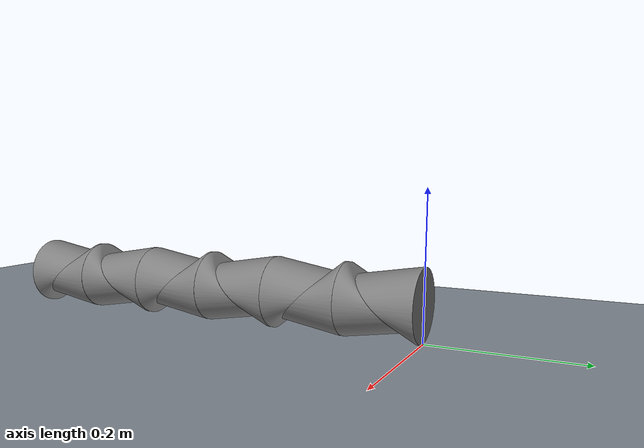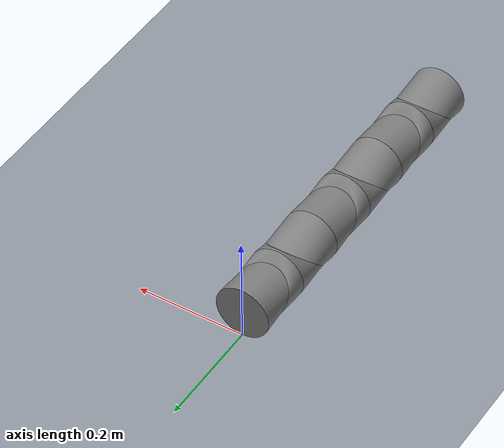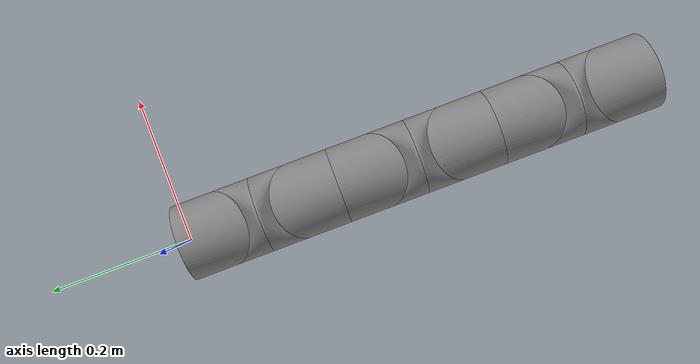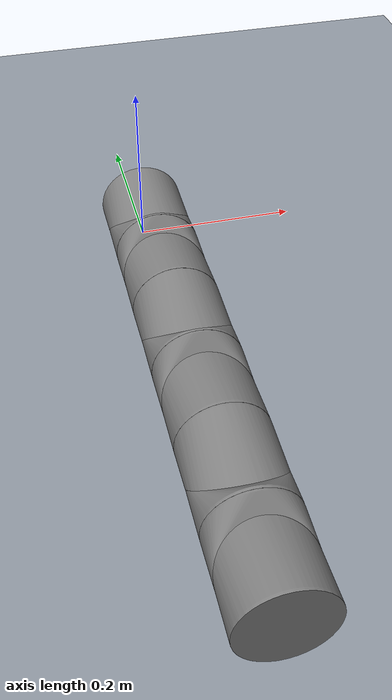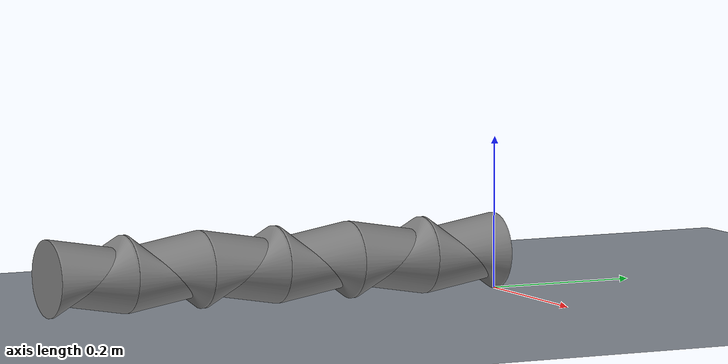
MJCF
<?xml version='1.0' encoding='UTF-8'?>
<mujoco model="zbot">
    <compiler inertiafromgeom="true" angle="degree" autolimits="true" fusestatic="false" />
    <default>
        <default class="coliision">
            <geom contype="1" conaffinity="0" group="4" type="mesh" mesh="mb" />
            <default class="coliision_a">
                <geom mesh="ma" />
            </default>

            <default class="coliision_b">
                <geom mesh="mb" />
            </default>
        </default>
        <default class="visual">
            <geom contype="0" conaffinity="0" group="1" type="mesh" mesh="mb" />
            <default class="visual_a">
                <geom mesh="ma" />
            </default>

            <default class="visual_b">
                <geom mesh="mb" />
            </default>
        </default>
        <joint range="-180 180" limited="true" />
    </default>

    <asset>
        <mesh name="ma" file="ma.obj" />
        <mesh name="mb" file="mb.obj" />
    </asset>

    <worldbody>
        <geom name="floor" type="plane" size="5 5 .01" rgba=".55 .58 .62 1" /><body name="root" pos="0 0 0.05" euler="90 0 0">
            <freejoint />
            <geom class="visual_a" pos="0 0 0" />
            <body name="body_0" pos="0 0 0.0">
                <joint name="joint_0" type="hinge" pos="0 0 0.053" axis="0 -1 1" />
                <geom class="visual_b" pos="0 0 0" />
                <geom class="visual_a" pos="0 0 0.106" euler="0 0 180" />
                <body name="body_1" pos="0 0 0.106" euler="0 0 180">
                    <joint name="joint_1" type="hinge" pos="0 0 0.053" axis="0 -1 1" />
                    <geom class="visual_b" pos="0 0 0" />
                    <geom class="visual_a" pos="0 0 0.106" euler="0 0 180" />
                    <body name="body_2" pos="0 0 0.106" euler="0 0 180">
                        <joint name="joint_2" type="hinge" pos="0 0 0.053" axis="0 -1 1" />
                        <geom class="visual_b" pos="0 0 0" />
                        <geom class="visual_a" pos="0 0 0.106" euler="0 0 180" />
                        <body name="body_3" pos="0 0 0.106" euler="0 0 180">
                            <joint name="joint_3" type="hinge" pos="0 0 0.053" axis="0 -1 1" />
                            <geom class="visual_b" pos="0 0 0" />
                            <geom class="visual_a" pos="0 0 0.106" euler="0 0 180" />
                            <body name="body_4" pos="0 0 0.106" euler="0 0 180">
                                <joint name="joint_4" type="hinge" pos="0 0 0.053" axis="0 -1 1" />
                                <geom class="visual_b" pos="0 0 0" />
                                <geom class="visual_a" pos="0 0 0.106" euler="0 0 180" />
                                <body name="body_5" pos="0 0 0.106" euler="0 0 180">
                                    <joint name="joint_5" type="hinge" pos="0 0 0.053" axis="0 -1 1" />
                                    <geom class="visual_b" pos="0 0 0" />
                                    </body>
                            </body>
                        </body>
                    </body>
                </body>
            </body>
        </body>
    </worldbody>
<option timestep="0.0166" gravity="0 0 -9.81" integrator="implicitfast" /><actuator><position name="joint_0" joint="joint_0" kp="10" forcelimited="false" ctrllimited="false" /><position name="joint_1" joint="joint_1" kp="10" forcelimited="false" ctrllimited="false" /><position name="joint_2" joint="joint_2" kp="10" forcelimited="false" ctrllimited="false" /><position name="joint_3" joint="joint_3" kp="10" forcelimited="false" ctrllimited="false" /><position name="joint_4" joint="joint_4" kp="10" forcelimited="false" ctrllimited="false" /><position name="joint_5" joint="joint_5" kp="10" forcelimited="false" ctrllimited="false" /></actuator><sensor><framequat name="rl_base_quat" objtype="xbody" objname="body_3" /><frameangvel name="rl_base_angvel" objtype="xbody" objname="body_3" /><framepos name="rl_base_pos" objtype="xbody" objname="body_3" /><framelinvel name="rl_base_linvel" objtype="xbody" objname="body_3" /></sensor><keyframe><key name="initial" qpos="0.3499999940395355 -0.002241811016574502 0.05029675364494324 0.5 0.5000000596046448 -0.5000000596046448 -0.5 0.0 0.0 0.0 0.0 0.0 0.0" ctrl="0 0 0 0 0 0" /></keyframe></mujoco>
